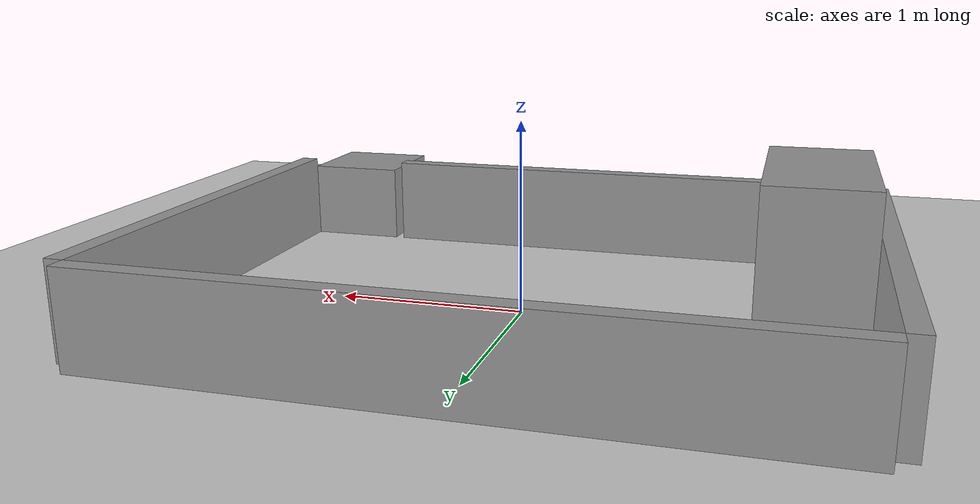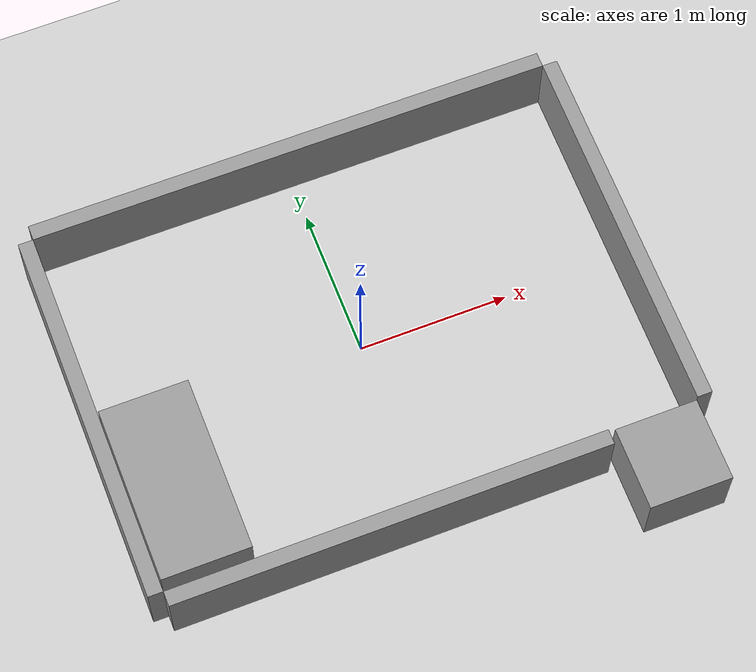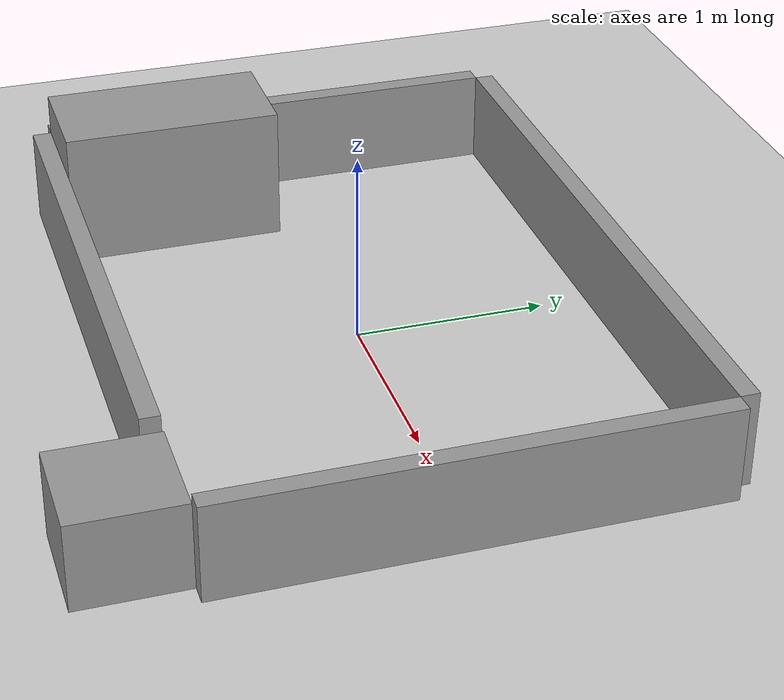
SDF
<sdf version="1.7">
 <world name="default">
  <light name="sun" type="directional">
   <pose>0 0 10 0 -0 0</pose>
   <diffuse>0.8 0.8 0.8 1</diffuse>
   <specular>0.2 0.2 0.2 1</specular>
   <attenuation>
    <range>1000</range>
    <constant>0.9</constant>
    <linear>0.01</linear>
    <quadratic>0.001</quadratic>
   </attenuation>
   <direction>-0.5 0.1 -0.9</direction>
   <spot><inner_angle>0</inner_angle><outer_angle>0</outer_angle><falloff>0</falloff></spot>
  </light>
  <model name="ground_plane">
   <static>1</static>
   <link name="link">
    <collision name="collision">
     <geometry><plane><normal>0 0 1</normal><size>100 100</size></plane></geometry>
     <surface>
      <contact><collide_bitmask>65535</collide_bitmask></contact>
      <friction><ode><mu>100</mu><mu2>50</mu2></ode></friction>
     </surface>
    </collision>
    <visual name="visual">
     <cast_shadows>0</cast_shadows>
     <geometry><plane><normal>0 0 1</normal><size>100 100</size></plane></geometry>
     <material>
      <script><uri>file://media/materials/scripts/gazebo.material</uri><name>Gazebo/Grey</name></script>
     </material>
    </visual>
   </link>
  </model>
  <gravity>0 0 -9.8</gravity>
  <magnetic_field>6e-06 2.3e-05 -4.2e-05</magnetic_field>
  <atmosphere type="adiabatic"/>
  <physics type="ode">
   <max_step_size>0.001</max_step_size>
   <real_time_factor>1</real_time_factor>
   <real_time_update_rate>1000</real_time_update_rate>
  </physics>
  <scene><ambient>0.4 0.4 0.4 1</ambient><background>0.7 0.7 0.7 1</background><shadows>1</shadows></scene>
  <spherical_coordinates>
   <surface_model>EARTH_WGS84</surface_model>
   <latitude_deg>0</latitude_deg>
   <longitude_deg>0</longitude_deg>
   <elevation>0</elevation>
   <heading_deg>0</heading_deg>
  </spherical_coordinates>
  <model name="hri_demo">
   <link name="Wall_0">
    <collision name="Wall_0_Collision">
     <geometry><box><size>2.5 0.1 0.5</size></box></geometry>
     <pose>0 0 0.25 0 -0 0</pose>
    </collision>
    <visual name="Wall_0_Visual">
     <pose>0 0 0.25 0 -0 0</pose>
     <geometry><box><size>2.5 0.1 0.5</size></box></geometry>
     <material>
      <script><uri>file://media/materials/scripts/gazebo.material</uri><name>Gazebo/Grey</name></script>
      <ambient>1 1 1 1</ambient>
     </material>
     <meta><layer>0</layer></meta>
    </visual>
    <pose>-1.8 0 0 0 -0 1.5708</pose>
   </link>
   <link name="Wall_2">
    <collision name="Wall_2_Collision">
     <geometry><box><size>2.5 0.1 0.5</size></box></geometry>
     <pose>0 0 0.25 0 -0 0</pose>
    </collision>
    <visual name="Wall_2_Visual">
     <pose>0 0 0.25 0 -0 0</pose>
     <geometry><box><size>2.5 0.1 0.5</size></box></geometry>
     <material>
      <script><uri>file://media/materials/scripts/gazebo.material</uri><name>Gazebo/Grey</name></script>
      <ambient>1 1 1 1</ambient>
     </material>
     <meta><layer>0</layer></meta>
    </visual>
    <pose>1.8 0 0 0 -0 1.5708</pose>
   </link>
   <link name="Wall_6">
    <collision name="Wall_6_Collision">
     <geometry><box><size>3.499 0.1 0.5</size></box></geometry>
     <pose>0 0 0.25 0 -0 0</pose>
    </collision>
    <visual name="Wall_6_Visual">
     <pose>0 0 0.25 0 -0 0</pose>
     <geometry><box><size>3.499 0.1 0.5</size></box></geometry>
     <material>
      <script><uri>file://media/materials/scripts/gazebo.material</uri><name>Gazebo/Grey</name></script>
      <ambient>1 1 1 1</ambient>
     </material>
     <meta><layer>0</layer></meta>
    </visual>
    <pose>0.0005 1.3 0 0 -0 3.14159</pose>
   </link>
   <link name="Wall_8">
    <collision name="Wall_8_Collision">
     <geometry><box><size>2.9 0.1 0.5</size></box></geometry>
     <pose>0 0 0.25 0 -0 0</pose>
    </collision>
    <visual name="Wall_8_Visual">
     <pose>0 0 0.25 0 -0 0</pose>
     <geometry><box><size>2.9 0.1 0.5</size></box></geometry>
     <material>
      <script><uri>file://media/materials/scripts/gazebo.material</uri><name>Gazebo/Grey</name></script>
      <ambient>1 1 1 1</ambient>
     </material>
     <meta><layer>0</layer></meta>
    </visual>
    <pose>-0.3 -1.3 0 0 -0 3.14159</pose>
   </link>
   <static>1</static>
  </model>
  <model name="inventory_table">
   <link name="link">
    <inertial>
     <mass>1</mass>
     <inertia>
      <ixx>0.166667</ixx>
      <ixy>0</ixy>
      <ixz>0</ixz>
      <iyy>0.166667</iyy>
      <iyz>0</iyz>
      <izz>0.166667</izz>
     </inertia>
    </inertial>
    <visual name="visual">
     <geometry><box><size>1.15 0.58 0.72</size></box></geometry>
     <material>
      <script><name>Gazebo/Grey</name><uri>file://media/materials/scripts/gazebo.material</uri></script>
      <shader type="pixel"><normal_map>__default__</normal_map></shader>
      <ambient>0.3 0.3 0.3 1</ambient>
      <diffuse>0.7 0.7 0.7 1</diffuse>
      <specular>0.01 0.01 0.01 1</specular>
      <emissive>0 0 0 1</emissive>
     </material>
    </visual>
    <collision name="collision">
     <geometry><box><size>1.15 0.58 0.72</size></box></geometry>
     <surface>
      <friction>
       <ode><mu>1</mu><mu2>1</mu2><fdir1>0 0 0</fdir1><slip1>0</slip1><slip2>0</slip2></ode>
       <torsional>
        <coefficient>1</coefficient>
        <patch_radius>0</patch_radius>
        <surface_radius>0</surface_radius>
        <use_patch_radius>1</use_patch_radius>
        <ode><slip>0</slip></ode>
       </torsional>
      </friction>
      <bounce><restitution_coefficient>0</restitution_coefficient><threshold>1e+06</threshold></bounce>
      <contact>
       <collide_without_contact>0</collide_without_contact>
       <collide_without_contact_bitmask>1</collide_without_contact_bitmask>
       <collide_bitmask>1</collide_bitmask>
       <ode>
        <soft_cfm>0</soft_cfm>
        <soft_erp>0.2</soft_erp>
        <kp>1e+13</kp>
        <kd>1</kd>
        <max_vel>0.01</max_vel>
        <min_depth>0</min_depth>
       </ode>
       <bullet>
        <split_impulse>1</split_impulse>
        <split_impulse_penetration_threshold>-0.01</split_impulse_penetration_threshold>
        <soft_cfm>0</soft_cfm>
        <soft_erp>0.2</soft_erp>
        <kp>1e+13</kp>
        <kd>1</kd>
       </bullet>
      </contact>
     </surface>
    </collision>
   </link>
   <static>0</static>
   <pose>-1.4599 -0.6749 0.36 0 -0 1.57076</pose>
  </model>
  <model name="target_table">
   <link name="link">
    <inertial>
     <mass>1</mass>
     <inertia>
      <ixx>0.166667</ixx>
      <ixy>0</ixy>
      <ixz>0</ixz>
      <iyy>0.166667</iyy>
      <iyz>0</iyz>
      <izz>0.166667</izz>
     </inertia>
    </inertial>
    <visual name="visual">
     <geometry><box><size>0.55 0.55 0.45</size></box></geometry>
     <material>
      <script><name>Gazebo/Grey</name><uri>file://media/materials/scripts/gazebo.material</uri></script>
      <shader type="pixel"><normal_map>__default__</normal_map></shader>
      <ambient>0.3 0.3 0.3 1</ambient>
      <diffuse>0.7 0.7 0.7 1</diffuse>
      <specular>0.01 0.01 0.01 1</specular>
      <emissive>0 0 0 1</emissive>
     </material>
    </visual>
    <collision name="collision">
     <geometry><box><size>0.55 0.55 0.45</size></box></geometry>
     <surface>
      <friction>
       <ode><mu>1</mu><mu2>1</mu2><fdir1>0 0 0</fdir1><slip1>0</slip1><slip2>0</slip2></ode>
       <torsional>
        <coefficient>1</coefficient>
        <patch_radius>0</patch_radius>
        <surface_radius>0</surface_radius>
        <use_patch_radius>1</use_patch_radius>
        <ode><slip>0</slip></ode>
       </torsional>
      </friction>
      <bounce><restitution_coefficient>0</restitution_coefficient><threshold>1e+06</threshold></bounce>
      <contact>
       <collide_without_contact>0</collide_without_contact>
       <collide_without_contact_bitmask>1</collide_without_contact_bitmask>
       <collide_bitmask>1</collide_bitmask>
       <ode>
        <soft_cfm>0</soft_cfm>
        <soft_erp>0.2</soft_erp>
        <kp>1e+13</kp>
        <kd>1</kd>
        <max_vel>0.01</max_vel>
        <min_depth>0</min_depth>
       </ode>
       <bullet>
        <split_impulse>1</split_impulse>
        <split_impulse_penetration_threshold>-0.01</split_impulse_penetration_threshold>
        <soft_cfm>0</soft_cfm>
        <soft_erp>0.2</soft_erp>
        <kp>1e+13</kp>
        <kd>1</kd>
       </bullet>
      </contact>
     </surface>
    </collision>
   </link>
   <static>0</static>
   <pose>1.475 -1.525 0.225 0 -0 0</pose>
  </model>
 </world>
</sdf>
